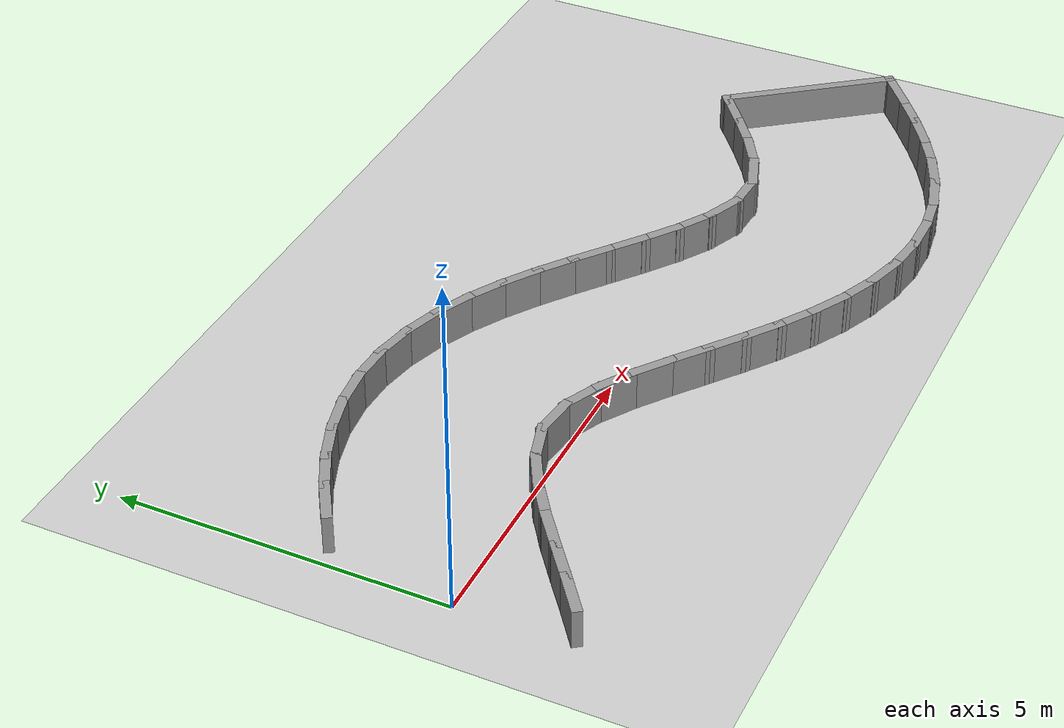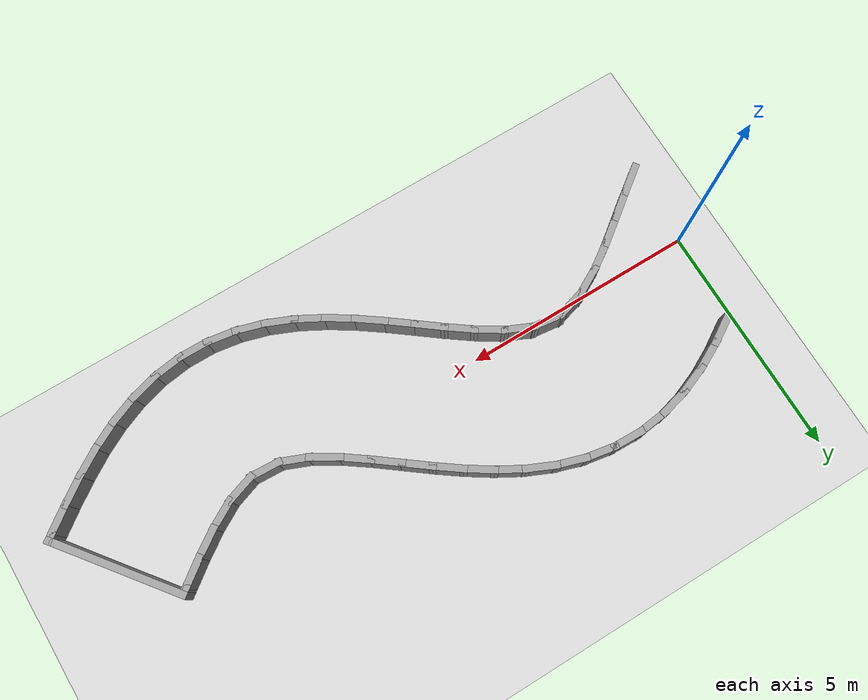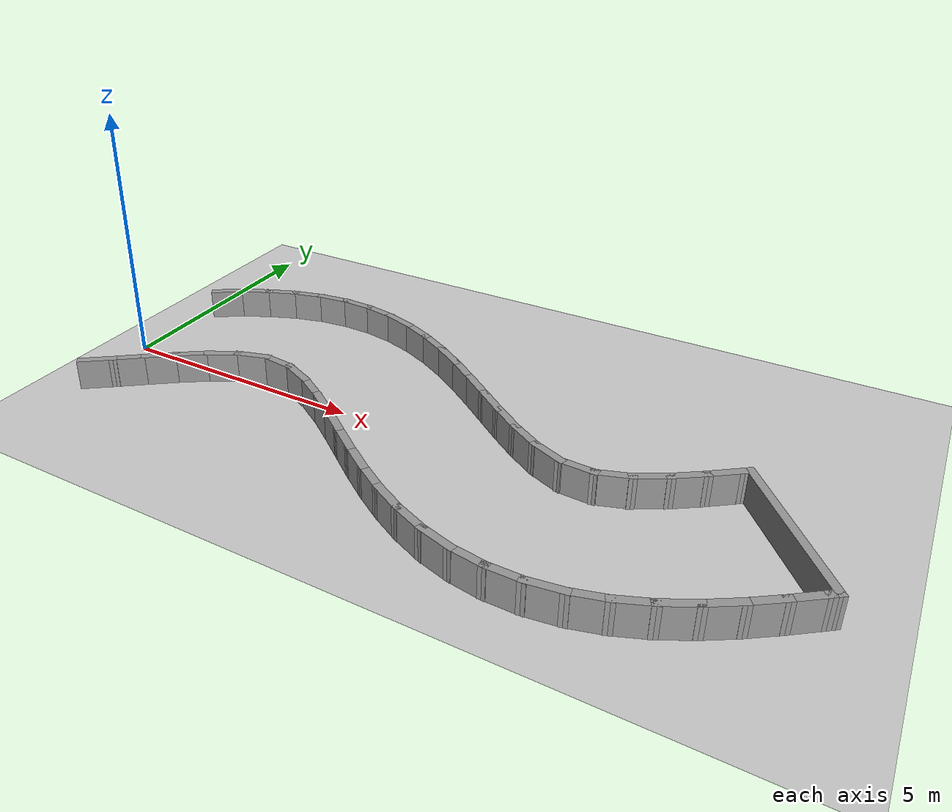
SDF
<sdf version="1.7">
 <world name="default">
  <model name="ground_plane">
   <static>1</static>
   <link name="link">
    <collision name="collision">
     <geometry><plane><normal>0 0 1</normal><size>100 100</size></plane></geometry>
     <surface><friction><ode><mu>100</mu><mu2>50</mu2></ode></friction></surface>
    </collision>
    <visual name="visual">
     <cast_shadows>0</cast_shadows>
     <geometry><plane><normal>0 0 1</normal><size>100 100</size></plane></geometry>
     <material>
      <script><uri>file://media/materials/scripts/gazebo.material</uri><name>Gazebo/Grey</name></script>
     </material>
    </visual>
   </link>
  </model>
  <model name="double_s_curve">
   <link name="Wall_27">
    <collision name="Wall_27_Collision">
     <geometry><box><size>0.7499 0.1500 0.6000</size></box></geometry>
     <pose>0 0 0.3000 0 -0 0</pose>
    </collision>
    <visual name="Wall_27_Visual">
     <pose>0 0 0.3000 0 -0 0</pose>
     <geometry><box><size>0.7499 0.1500 0.6000</size></box></geometry>
     <material>
      <script><uri>file://media/materials/scripts/gazebo.material</uri><name>Gazebo/Grey</name></script>
      <ambient>1 1 1 1</ambient>
     </material>
    </visual>
    <pose>0.5509 2.1172 0 0 -0 0.55933</pose>
   </link>
   <link name="Wall_28">
    <collision name="Wall_28_Collision">
     <geometry><box><size>0.7498 0.1500 0.6000</size></box></geometry>
     <pose>0 0 0.3000 0 -0 0</pose>
    </collision>
    <visual name="Wall_28_Visual">
     <pose>0 0 0.3000 0 -0 0</pose>
     <geometry><box><size>0.7498 0.1500 0.6000</size></box></geometry>
     <material>
      <script><uri>file://media/materials/scripts/gazebo.material</uri><name>Gazebo/Grey</name></script>
      <ambient>1 1 1 1</ambient>
     </material>
    </visual>
    <pose>1.0712 2.4149 0 0 -0 0.48016</pose>
   </link>
   <link name="Wall_29">
    <collision name="Wall_29_Collision">
     <geometry><box><size>0.7497 0.1500 0.6000</size></box></geometry>
     <pose>0 0 0.3000 0 -0 0</pose>
    </collision>
    <visual name="Wall_29_Visual">
     <pose>0 0 0.3000 0 -0 0</pose>
     <geometry><box><size>0.7497 0.1500 0.6000</size></box></geometry>
     <material>
      <script><uri>file://media/materials/scripts/gazebo.material</uri><name>Gazebo/Grey</name></script>
      <ambient>1 1 1 1</ambient>
     </material>
    </visual>
    <pose>1.6158 2.6641 0 0 -0 0.37811</pose>
   </link>
   <link name="Wall_30">
    <collision name="Wall_30_Collision">
     <geometry><box><size>0.7496 0.1500 0.6000</size></box></geometry>
     <pose>0 0 0.3000 0 -0 0</pose>
    </collision>
    <visual name="Wall_30_Visual">
     <pose>0 0 0.3000 0 -0 0</pose>
     <geometry><box><size>0.7496 0.1500 0.6000</size></box></geometry>
     <material>
      <script><uri>file://media/materials/scripts/gazebo.material</uri><name>Gazebo/Grey</name></script>
      <ambient>1 1 1 1</ambient>
     </material>
    </visual>
    <pose>2.1845 2.8505 0 0 -0 0.25511</pose>
   </link>
   <link name="Wall_31">
    <collision name="Wall_31_Collision">
     <geometry><box><size>0.7495 0.1500 0.6000</size></box></geometry>
     <pose>0 0 0.3000 0 -0 0</pose>
    </collision>
    <visual name="Wall_31_Visual">
     <pose>0 0 0.3000 0 -0 0</pose>
     <geometry><box><size>0.7495 0.1500 0.6000</size></box></geometry>
     <material>
      <script><uri>file://media/materials/scripts/gazebo.material</uri><name>Gazebo/Grey</name></script>
      <ambient>1 1 1 1</ambient>
     </material>
    </visual>
    <pose>2.7723 2.9610 0 0 -0 0.11659</pose>
   </link>
   <link name="Wall_32">
    <collision name="Wall_32_Collision">
     <geometry><box><size>0.7494 0.1500 0.6000</size></box></geometry>
     <pose>0 0 0.3000 0 -0 0</pose>
    </collision>
    <visual name="Wall_32_Visual">
     <pose>0 0 0.3000 0 -0 0</pose>
     <geometry><box><size>0.7494 0.1500 0.6000</size></box></geometry>
     <material>
      <script><uri>file://media/materials/scripts/gazebo.material</uri><name>Gazebo/Grey</name></script>
      <ambient>1 1 1 1</ambient>
     </material>
    </visual>
    <pose>3.3696 2.9871 0 0 -0 -0.02935</pose>
   </link>
   <link name="Wall_33">
    <collision name="Wall_33_Collision">
     <geometry><box><size>0.7495 0.1500 0.6000</size></box></geometry>
     <pose>0 0 0.3000 0 -0 0</pose>
    </collision>
    <visual name="Wall_33_Visual">
     <pose>0 0 0.3000 0 -0 0</pose>
     <geometry><box><size>0.7495 0.1500 0.6000</size></box></geometry>
     <material>
      <script><uri>file://media/materials/scripts/gazebo.material</uri><name>Gazebo/Grey</name></script>
      <ambient>1 1 1 1</ambient>
     </material>
    </visual>
    <pose>3.9644 2.9266 0 0 -0 -0.17338</pose>
   </link>
   <link name="Wall_34">
    <collision name="Wall_34_Collision">
     <geometry><box><size>0.7496 0.1500 0.6000</size></box></geometry>
     <pose>0 0 0.3000 0 -0 0</pose>
    </collision>
    <visual name="Wall_34_Visual">
     <pose>0 0 0.3000 0 -0 0</pose>
     <geometry><box><size>0.7496 0.1500 0.6000</size></box></geometry>
     <material>
      <script><uri>file://media/materials/scripts/gazebo.material</uri><name>Gazebo/Grey</name></script>
      <ambient>1 1 1 1</ambient>
     </material>
    </visual>
    <pose>4.5455 2.7844 0 0 -0 -0.30649</pose>
   </link>
   <link name="Wall_35">
    <collision name="Wall_35_Collision">
     <geometry><box><size>0.7497 0.1500 0.6000</size></box></geometry>
     <pose>0 0 0.3000 0 -0 0</pose>
    </collision>
    <visual name="Wall_35_Visual">
     <pose>0 0 0.3000 0 -0 0</pose>
     <geometry><box><size>0.7497 0.1500 0.6000</size></box></geometry>
     <material>
      <script><uri>file://media/materials/scripts/gazebo.material</uri><name>Gazebo/Grey</name></script>
      <ambient>1 1 1 1</ambient>
     </material>
    </visual>
    <pose>5.1050 2.5712 0 0 -0 -0.42155</pose>
   </link>
   <link name="Wall_36">
    <collision name="Wall_36_Collision">
     <geometry><box><size>0.7498 0.1500 0.6000</size></box></geometry>
     <pose>0 0 0.3000 0 -0 0</pose>
    </collision>
    <visual name="Wall_36_Visual">
     <pose>0 0 0.3000 0 -0 0</pose>
     <geometry><box><size>0.7498 0.1500 0.6000</size></box></geometry>
     <material>
      <script><uri>file://media/materials/scripts/gazebo.material</uri><name>Gazebo/Grey</name></script>
      <ambient>1 1 1 1</ambient>
     </material>
    </visual>
    <pose>5.6396 2.3009 0 0 -0 -0.51471</pose>
   </link>
   <link name="Wall_37">
    <collision name="Wall_37_Collision">
     <geometry><box><size>0.7499 0.1500 0.6000</size></box></geometry>
     <pose>0 0 0.3000 0 -0 0</pose>
    </collision>
    <visual name="Wall_37_Visual">
     <pose>0 0 0.3000 0 -0 0</pose>
     <geometry><box><size>0.7499 0.1500 0.6000</size></box></geometry>
     <material>
      <script><uri>file://media/materials/scripts/gazebo.material</uri><name>Gazebo/Grey</name></script>
      <ambient>1 1 1 1</ambient>
     </material>
    </visual>
    <pose>6.1509 1.9878 0 0 -0 -0.58423</pose>
   </link>
   <link name="Wall_38">
    <collision name="Wall_38_Collision">
     <geometry><box><size>0.7500 0.1500 0.6000</size></box></geometry>
     <pose>0 0 0.3000 0 -0 0</pose>
    </collision>
    <visual name="Wall_38_Visual">
     <pose>0 0 0.3000 0 -0 0</pose>
     <geometry><box><size>0.7500 0.1500 0.6000</size></box></geometry>
     <material>
      <script><uri>file://media/materials/scripts/gazebo.material</uri><name>Gazebo/Grey</name></script>
      <ambient>1 1 1 1</ambient>
     </material>
    </visual>
    <pose>6.6434 1.6455 0 0 -0 -0.63075</pose>
   </link>
   <link name="Wall_39">
    <collision name="Wall_39_Collision">
     <geometry><box><size>0.7500 0.1500 0.6000</size></box></geometry>
     <pose>0 0 0.3000 0 -0 0</pose>
    </collision>
    <visual name="Wall_39_Visual">
     <pose>0 0 0.3000 0 -0 0</pose>
     <geometry><box><size>0.7500 0.1500 0.6000</size></box></geometry>
     <material>
      <script><uri>file://media/materials/scripts/gazebo.material</uri><name>Gazebo/Grey</name></script>
      <ambient>1 1 1 1</ambient>
     </material>
    </visual>
    <pose>7.1237 1.2860 0 0 -0 -0.65428</pose>
   </link>
   <link name="Wall_40">
    <collision name="Wall_40_Collision">
     <geometry><box><size>0.7500 0.1500 0.6000</size></box></geometry>
     <pose>0 0 0.3000 0 -0 0</pose>
    </collision>
    <visual name="Wall_40_Visual">
     <pose>0 0 0.3000 0 -0 0</pose>
     <geometry><box><size>0.7500 0.1500 0.6000</size></box></geometry>
     <material>
      <script><uri>file://media/materials/scripts/gazebo.material</uri><name>Gazebo/Grey</name></script>
      <ambient>1 1 1 1</ambient>
     </material>
    </visual>
    <pose>7.5999 0.9210 0 0 -0 -0.65361</pose>
   </link>
   <link name="Wall_41">
    <collision name="Wall_41_Collision">
     <geometry><box><size>0.7499 0.1500 0.6000</size></box></geometry>
     <pose>0 0 0.3000 0 -0 0</pose>
    </collision>
    <visual name="Wall_41_Visual">
     <pose>0 0 0.3000 0 -0 0</pose>
     <geometry><box><size>0.7499 0.1500 0.6000</size></box></geometry>
     <material>
      <script><uri>file://media/materials/scripts/gazebo.material</uri><name>Gazebo/Grey</name></script>
      <ambient>1 1 1 1</ambient>
     </material>
    </visual>
    <pose>8.0816 0.5635 0 0 -0 -0.62337</pose>
   </link>
   <link name="Wall_42">
    <collision name="Wall_42_Collision">
     <geometry><box><size>0.7497 0.1500 0.6000</size></box></geometry>
     <pose>0 0 0.3000 0 -0 0</pose>
    </collision>
    <visual name="Wall_42_Visual">
     <pose>0 0 0.3000 0 -0 0</pose>
     <geometry><box><size>0.7497 0.1500 0.6000</size></box></geometry>
     <material>
      <script><uri>file://media/materials/scripts/gazebo.material</uri><name>Gazebo/Grey</name></script>
      <ambient>1 1 1 1</ambient>
     </material>
    </visual>
    <pose>8.5810 0.2319 0 0 -0 -0.54894</pose>
   </link>
   <link name="Wall_43">
    <collision name="Wall_43_Collision">
     <geometry><box><size>0.7486 0.1500 0.6000</size></box></geometry>
     <pose>0 0 0.3000 0 -0 0</pose>
    </collision>
    <visual name="Wall_43_Visual">
     <pose>0 0 0.3000 0 -0 0</pose>
     <geometry><box><size>0.7486 0.1500 0.6000</size></box></geometry>
     <material>
      <script><uri>file://media/materials/scripts/gazebo.material</uri><name>Gazebo/Grey</name></script>
      <ambient>1 1 1 1</ambient>
     </material>
    </visual>
    <pose>9.1138 -0.0380 0 0 -0 -0.38845</pose>
   </link>
   <link name="Wall_44">
    <collision name="Wall_44_Collision">
     <geometry><box><size>0.7451 0.1500 0.6000</size></box></geometry>
     <pose>0 0 0.3000 0 -0 0</pose>
    </collision>
    <visual name="Wall_44_Visual">
     <pose>0 0 0.3000 0 -0 0</pose>
     <geometry><box><size>0.7451 0.1500 0.6000</size></box></geometry>
     <material>
      <script><uri>file://media/materials/scripts/gazebo.material</uri><name>Gazebo/Grey</name></script>
      <ambient>1 1 1 1</ambient>
     </material>
    </visual>
    <pose>9.6880 -0.1650 0 0 -0 -0.04592</pose>
   </link>
   <link name="Wall_45">
    <collision name="Wall_45_Collision">
     <geometry><box><size>0.7481 0.1500 0.6000</size></box></geometry>
     <pose>0 0 0.3000 0 -0 0</pose>
    </collision>
    <visual name="Wall_45_Visual">
     <pose>0 0 0.3000 0 -0 0</pose>
     <geometry><box><size>0.7481 0.1500 0.6000</size></box></geometry>
     <material>
      <script><uri>file://media/materials/scripts/gazebo.material</uri><name>Gazebo/Grey</name></script>
      <ambient>1 1 1 1</ambient>
     </material>
    </visual>
    <pose>10.2677 -0.0805 0 0 -0 0.33440</pose>
   </link>
   <link name="Wall_46">
    <collision name="Wall_46_Collision">
     <geometry><box><size>0.7496 0.1500 0.6000</size></box></geometry>
     <pose>0 0 0.3000 0 -0 0</pose>
    </collision>
    <visual name="Wall_46_Visual">
     <pose>0 0 0.3000 0 -0 0</pose>
     <geometry><box><size>0.7496 0.1500 0.6000</size></box></geometry>
     <material>
      <script><uri>file://media/materials/scripts/gazebo.material</uri><name>Gazebo/Grey</name></script>
      <ambient>1 1 1 1</ambient>
     </material>
    </visual>
    <pose>10.8097 0.1678 0 0 -0 0.52457</pose>
   </link>
   <link name="Wall_47">
    <collision name="Wall_47_Collision">
     <geometry><box><size>0.7499 0.1500 0.6000</size></box></geometry>
     <pose>0 0 0.3000 0 -0 0</pose>
    </collision>
    <visual name="Wall_47_Visual">
     <pose>0 0 0.3000 0 -0 0</pose>
     <geometry><box><size>0.7499 0.1500 0.6000</size></box></geometry>
     <material>
      <script><uri>file://media/materials/scripts/gazebo.material</uri><name>Gazebo/Grey</name></script>
      <ambient>1 1 1 1</ambient>
     </material>
    </visual>
    <pose>11.3147 0.4903 0 0 -0 0.61210</pose>
   </link>
   <link name="Wall_48">
    <collision name="Wall_48_Collision">
     <geometry><box><size>0.7500 0.1500 0.6000</size></box></geometry>
     <pose>0 0 0.3000 0 -0 0</pose>
    </collision>
    <visual name="Wall_48_Visual">
     <pose>0 0 0.3000 0 -0 0</pose>
     <geometry><box><size>0.7500 0.1500 0.6000</size></box></geometry>
     <material>
      <script><uri>file://media/materials/scripts/gazebo.material</uri><name>Gazebo/Grey</name></script>
      <ambient>1 1 1 1</ambient>
     </material>
    </visual>
    <pose>11.7990 0.8442 0 0 -0 0.64997</pose>
   </link>
   <link name="Wall_49">
    <collision name="Wall_49_Collision">
     <geometry><box><size>0.2837 0.1500 0.6000</size></box></geometry>
     <pose>0 0 0.3000 0 -0 0</pose>
    </collision>
    <visual name="Wall_49_Visual">
     <pose>0 0 0.3000 0 -0 0</pose>
     <geometry><box><size>0.2837 0.1500 0.6000</size></box></geometry>
     <material>
      <script><uri>file://media/materials/scripts/gazebo.material</uri><name>Gazebo/Grey</name></script>
      <ambient>1 1 1 1</ambient>
     </material>
    </visual>
    <pose>12.0907 1.0666 0 0 -0 0.65803</pose>
   </link>
   <link name="Wall_73">
    <collision name="Wall_73_Collision">
     <geometry><box><size>0.7500 0.1500 0.6000</size></box></geometry>
     <pose>0 0 0.3000 0 -0 0</pose>
    </collision>
    <visual name="Wall_73_Visual">
     <pose>0 0 0.3000 0 -0 0</pose>
     <geometry><box><size>0.7500 0.1500 0.6000</size></box></geometry>
     <material>
      <script><uri>file://media/materials/scripts/gazebo.material</uri><name>Gazebo/Grey</name></script>
      <ambient>1 1 1 1</ambient>
     </material>
    </visual>
    <pose>0.3256 -1.5112 0 0 -0 0.64231</pose>
   </link>
   <link name="Wall_74">
    <collision name="Wall_74_Collision">
     <geometry><box><size>0.7500 0.1500 0.6000</size></box></geometry>
     <pose>0 0 0.3000 0 -0 0</pose>
    </collision>
    <visual name="Wall_74_Visual">
     <pose>0 0 0.3000 0 -0 0</pose>
     <geometry><box><size>0.7500 0.1500 0.6000</size></box></geometry>
     <material>
      <script><uri>file://media/materials/scripts/gazebo.material</uri><name>Gazebo/Grey</name></script>
      <ambient>1 1 1 1</ambient>
     </material>
    </visual>
    <pose>0.8034 -1.1483 0 0 -0 0.65703</pose>
   </link>
   <link name="Wall_75">
    <collision name="Wall_75_Collision">
     <geometry><box><size>0.7500 0.1500 0.6000</size></box></geometry>
     <pose>0 0 0.3000 0 -0 0</pose>
    </collision>
    <visual name="Wall_75_Visual">
     <pose>0 0 0.3000 0 -0 0</pose>
     <geometry><box><size>0.7500 0.1500 0.6000</size></box></geometry>
     <material>
      <script><uri>file://media/materials/scripts/gazebo.material</uri><name>Gazebo/Grey</name></script>
      <ambient>1 1 1 1</ambient>
     </material>
    </visual>
    <pose>1.2804 -0.7844 0 0 -0 0.64617</pose>
   </link>
   <link name="Wall_76">
    <collision name="Wall_76_Collision">
     <geometry><box><size>0.7499 0.1500 0.6000</size></box></geometry>
     <pose>0 0 0.3000 0 -0 0</pose>
    </collision>
    <visual name="Wall_76_Visual">
     <pose>0 0 0.3000 0 -0 0</pose>
     <geometry><box><size>0.7499 0.1500 0.6000</size></box></geometry>
     <material>
      <script><uri>file://media/materials/scripts/gazebo.material</uri><name>Gazebo/Grey</name></script>
      <ambient>1 1 1 1</ambient>
     </material>
    </visual>
    <pose>1.7672 -0.4339 0 0 -0 0.60180</pose>
   </link>
   <link name="Wall_77">
    <collision name="Wall_77_Collision">
     <geometry><box><size>0.7495 0.1500 0.6000</size></box></geometry>
     <pose>0 0 0.3000 0 -0 0</pose>
    </collision>
    <visual name="Wall_77_Visual">
     <pose>0 0 0.3000 0 -0 0</pose>
     <geometry><box><size>0.7495 0.1500 0.6000</size></box></geometry>
     <material>
      <script><uri>file://media/materials/scripts/gazebo.material</uri><name>Gazebo/Grey</name></script>
      <ambient>1 1 1 1</ambient>
     </material>
    </visual>
    <pose>2.2771 -0.1198 0 0 -0 0.50253</pose>
   </link>
   <link name="Wall_78">
    <collision name="Wall_78_Collision">
     <geometry><box><size>0.7475 0.1500 0.6000</size></box></geometry>
     <pose>0 0 0.3000 0 -0 0</pose>
    </collision>
    <visual name="Wall_78_Visual">
     <pose>0 0 0.3000 0 -0 0</pose>
     <geometry><box><size>0.7475 0.1500 0.6000</size></box></geometry>
     <material>
      <script><uri>file://media/materials/scripts/gazebo.material</uri><name>Gazebo/Grey</name></script>
      <ambient>1 1 1 1</ambient>
     </material>
    </visual>
    <pose>2.8265 0.1086 0 0 -0 0.28512</pose>
   </link>
   <link name="Wall_79">
    <collision name="Wall_79_Collision">
     <geometry><box><size>0.7455 0.1500 0.6000</size></box></geometry>
     <pose>0 0 0.3000 0 -0 0</pose>
    </collision>
    <visual name="Wall_79_Visual">
     <pose>0 0 0.3000 0 -0 0</pose>
     <geometry><box><size>0.7455 0.1500 0.6000</size></box></geometry>
     <material>
      <script><uri>file://media/materials/scripts/gazebo.material</uri><name>Gazebo/Grey</name></script>
      <ambient>1 1 1 1</ambient>
     </material>
    </visual>
    <pose>3.4089 0.1581 0 0 -0 -0.11629</pose>
   </link>
   <link name="Wall_80">
    <collision name="Wall_80_Collision">
     <geometry><box><size>0.7490 0.1500 0.6000</size></box></geometry>
     <pose>0 0 0.3000 0 -0 0</pose>
    </collision>
    <visual name="Wall_80_Visual">
     <pose>0 0 0.3000 0 -0 0</pose>
     <geometry><box><size>0.7490 0.1500 0.6000</size></box></geometry>
     <material>
      <script><uri>file://media/materials/scripts/gazebo.material</uri><name>Gazebo/Grey</name></script>
      <ambient>1 1 1 1</ambient>
     </material>
    </visual>
    <pose>3.9776 0.0002 0 0 -0 -0.42459</pose>
   </link>
   <link name="Wall_81">
    <collision name="Wall_81_Collision">
     <geometry><box><size>0.7498 0.1500 0.6000</size></box></geometry>
     <pose>0 0 0.3000 0 -0 0</pose>
    </collision>
    <visual name="Wall_81_Visual">
     <pose>0 0 0.3000 0 -0 0</pose>
     <geometry><box><size>0.7498 0.1500 0.6000</size></box></geometry>
     <material>
      <script><uri>file://media/materials/scripts/gazebo.material</uri><name>Gazebo/Grey</name></script>
      <ambient>1 1 1 1</ambient>
     </material>
    </visual>
    <pose>4.5036 -0.2839 0 0 -0 -0.56552</pose>
   </link>
   <link name="Wall_82">
    <collision name="Wall_82_Collision">
     <geometry><box><size>0.7500 0.1500 0.6000</size></box></geometry>
     <pose>0 0 0.3000 0 -0 0</pose>
    </collision>
    <visual name="Wall_82_Visual">
     <pose>0 0 0.3000 0 -0 0</pose>
     <geometry><box><size>0.7500 0.1500 0.6000</size></box></geometry>
     <material>
      <script><uri>file://media/materials/scripts/gazebo.material</uri><name>Gazebo/Grey</name></script>
      <ambient>1 1 1 1</ambient>
     </material>
    </visual>
    <pose>4.9991 -0.6215 0 0 -0 -0.63089</pose>
   </link>
   <link name="Wall_83">
    <collision name="Wall_83_Collision">
     <geometry><box><size>0.7500 0.1500 0.6000</size></box></geometry>
     <pose>0 0 0.3000 0 -0 0</pose>
    </collision>
    <visual name="Wall_83_Visual">
     <pose>0 0 0.3000 0 -0 0</pose>
     <geometry><box><size>0.7500 0.1500 0.6000</size></box></geometry>
     <material>
      <script><uri>file://media/materials/scripts/gazebo.material</uri><name>Gazebo/Grey</name></script>
      <ambient>1 1 1 1</ambient>
     </material>
    </visual>
    <pose>5.4791 -0.9813 0 0 -0 -0.65553</pose>
   </link>
   <link name="Wall_84">
    <collision name="Wall_84_Collision">
     <geometry><box><size>0.7500 0.1500 0.6000</size></box></geometry>
     <pose>0 0 0.3000 0 -0 0</pose>
    </collision>
    <visual name="Wall_84_Visual">
     <pose>0 0 0.3000 0 -0 0</pose>
     <geometry><box><size>0.7500 0.1500 0.6000</size></box></geometry>
     <material>
      <script><uri>file://media/materials/scripts/gazebo.material</uri><name>Gazebo/Grey</name></script>
      <ambient>1 1 1 1</ambient>
     </material>
    </visual>
    <pose>5.9554 -1.3462 0 0 -0 -0.65197</pose>
   </link>
   <link name="Wall_85">
    <collision name="Wall_85_Collision">
     <geometry><box><size>0.7500 0.1500 0.6000</size></box></geometry>
     <pose>0 0 0.3000 0 -0 0</pose>
    </collision>
    <visual name="Wall_85_Visual">
     <pose>0 0 0.3000 0 -0 0</pose>
     <geometry><box><size>0.7500 0.1500 0.6000</size></box></geometry>
     <material>
      <script><uri>file://media/materials/scripts/gazebo.material</uri><name>Gazebo/Grey</name></script>
      <ambient>1 1 1 1</ambient>
     </material>
    </visual>
    <pose>6.4372 -1.7037 0 0 -0 -0.62458</pose>
   </link>
   <link name="Wall_86">
    <collision name="Wall_86_Collision">
     <geometry><box><size>0.7499 0.1500 0.6000</size></box></geometry>
     <pose>0 0 0.3000 0 -0 0</pose>
    </collision>
    <visual name="Wall_86_Visual">
     <pose>0 0 0.3000 0 -0 0</pose>
     <geometry><box><size>0.7499 0.1500 0.6000</size></box></geometry>
     <material>
      <script><uri>file://media/materials/scripts/gazebo.material</uri><name>Gazebo/Grey</name></script>
      <ambient>1 1 1 1</ambient>
     </material>
    </visual>
    <pose>6.9324 -2.0421 0 0 -0 -0.57442</pose>
   </link>
   <link name="Wall_87">
    <collision name="Wall_87_Collision">
     <geometry><box><size>0.7498 0.1500 0.6000</size></box></geometry>
     <pose>0 0 0.3000 0 -0 0</pose>
    </collision>
    <visual name="Wall_87_Visual">
     <pose>0 0 0.3000 0 -0 0</pose>
     <geometry><box><size>0.7498 0.1500 0.6000</size></box></geometry>
     <material>
      <script><uri>file://media/materials/scripts/gazebo.material</uri><name>Gazebo/Grey</name></script>
      <ambient>1 1 1 1</ambient>
     </material>
    </visual>
    <pose>7.4473 -2.3490 0 0 -0 -0.50078</pose>
   </link>
   <link name="Wall_88">
    <collision name="Wall_88_Collision">
     <geometry><box><size>0.7497 0.1500 0.6000</size></box></geometry>
     <pose>0 0 0.3000 0 -0 0</pose>
    </collision>
    <visual name="Wall_88_Visual">
     <pose>0 0 0.3000 0 -0 0</pose>
     <geometry><box><size>0.7497 0.1500 0.6000</size></box></geometry>
     <material>
      <script><uri>file://media/materials/scripts/gazebo.material</uri><name>Gazebo/Grey</name></script>
      <ambient>1 1 1 1</ambient>
     </material>
    </visual>
    <pose>7.9861 -2.6109 0 0 -0 -0.40407</pose>
   </link>
   <link name="Wall_89">
    <collision name="Wall_89_Collision">
     <geometry><box><size>0.7496 0.1500 0.6000</size></box></geometry>
     <pose>0 0 0.3000 0 -0 0</pose>
    </collision>
    <visual name="Wall_89_Visual">
     <pose>0 0 0.3000 0 -0 0</pose>
     <geometry><box><size>0.7496 0.1500 0.6000</size></box></geometry>
     <material>
      <script><uri>file://media/materials/scripts/gazebo.material</uri><name>Gazebo/Grey</name></script>
      <ambient>1 1 1 1</ambient>
     </material>
    </visual>
    <pose>8.5494 -2.8133 0 0 -0 -0.28558</pose>
   </link>
   <link name="Wall_90">
    <collision name="Wall_90_Collision">
     <geometry><box><size>0.7495 0.1500 0.6000</size></box></geometry>
     <pose>0 0 0.3000 0 -0 0</pose>
    </collision>
    <visual name="Wall_90_Visual">
     <pose>0 0 0.3000 0 -0 0</pose>
     <geometry><box><size>0.7495 0.1500 0.6000</size></box></geometry>
     <material>
      <script><uri>file://media/materials/scripts/gazebo.material</uri><name>Gazebo/Grey</name></script>
      <ambient>1 1 1 1</ambient>
     </material>
    </visual>
    <pose>9.1334 -2.9425 0 0 -0 -0.15000</pose>
   </link>
   <link name="Wall_91">
    <collision name="Wall_91_Collision">
     <geometry><box><size>0.7494 0.1500 0.6000</size></box></geometry>
     <pose>0 0 0.3000 0 -0 0</pose>
    </collision>
    <visual name="Wall_91_Visual">
     <pose>0 0 0.3000 0 -0 0</pose>
     <geometry><box><size>0.7494 0.1500 0.6000</size></box></geometry>
     <material>
      <script><uri>file://media/materials/scripts/gazebo.material</uri><name>Gazebo/Grey</name></script>
      <ambient>1 1 1 1</ambient>
     </material>
    </visual>
    <pose>9.7295 -2.9888 0 0 -0 -0.00496</pose>
   </link>
   <link name="Wall_92">
    <collision name="Wall_92_Collision">
     <geometry><box><size>0.7495 0.1500 0.6000</size></box></geometry>
     <pose>0 0 0.3000 0 -0 0</pose>
    </collision>
    <visual name="Wall_92_Visual">
     <pose>0 0 0.3000 0 -0 0</pose>
     <geometry><box><size>0.7495 0.1500 0.6000</size></box></geometry>
     <material>
      <script><uri>file://media/materials/scripts/gazebo.material</uri><name>Gazebo/Grey</name></script>
      <ambient>1 1 1 1</ambient>
     </material>
    </visual>
    <pose>10.3261 -2.9483 0 0 -0 0.14035</pose>
   </link>
   <link name="Wall_93">
    <collision name="Wall_93_Collision">
     <geometry><box><size>0.7496 0.1500 0.6000</size></box></geometry>
     <pose>0 0 0.3000 0 -0 0</pose>
    </collision>
    <visual name="Wall_93_Visual">
     <pose>0 0 0.3000 0 -0 0</pose>
     <geometry><box><size>0.7496 0.1500 0.6000</size></box></geometry>
     <material>
      <script><uri>file://media/materials/scripts/gazebo.material</uri><name>Gazebo/Grey</name></script>
      <ambient>1 1 1 1</ambient>
     </material>
    </visual>
    <pose>10.9112 -2.8245 0 0 -0 0.27671</pose>
   </link>
   <link name="Wall_94">
    <collision name="Wall_94_Collision">
     <geometry><box><size>0.7497 0.1500 0.6000</size></box></geometry>
     <pose>0 0 0.3000 0 -0 0</pose>
    </collision>
    <visual name="Wall_94_Visual">
     <pose>0 0 0.3000 0 -0 0</pose>
     <geometry><box><size>0.7497 0.1500 0.6000</size></box></geometry>
     <material>
      <script><uri>file://media/materials/scripts/gazebo.material</uri><name>Gazebo/Grey</name></script>
      <ambient>1 1 1 1</ambient>
     </material>
    </visual>
    <pose>11.4762 -2.6268 0 0 -0 0.39646</pose>
   </link>
   <link name="Wall_95">
    <collision name="Wall_95_Collision">
     <geometry><box><size>0.7498 0.1500 0.6000</size></box></geometry>
     <pose>0 0 0.3000 0 -0 0</pose>
    </collision>
    <visual name="Wall_95_Visual">
     <pose>0 0 0.3000 0 -0 0</pose>
     <geometry><box><size>0.7498 0.1500 0.6000</size></box></geometry>
     <material>
      <script><uri>file://media/materials/scripts/gazebo.material</uri><name>Gazebo/Grey</name></script>
      <ambient>1 1 1 1</ambient>
     </material>
    </visual>
    <pose>12.0167 -2.3686 0 0 -0 0.49505</pose>
   </link>
   <link name="Wall_96">
    <collision name="Wall_96_Collision">
     <geometry><box><size>0.7499 0.1500 0.6000</size></box></geometry>
     <pose>0 0 0.3000 0 -0 0</pose>
    </collision>
    <visual name="Wall_96_Visual">
     <pose>0 0 0.3000 0 -0 0</pose>
     <geometry><box><size>0.7499 0.1500 0.6000</size></box></geometry>
     <material>
      <script><uri>file://media/materials/scripts/gazebo.material</uri><name>Gazebo/Grey</name></script>
      <ambient>1 1 1 1</ambient>
     </material>
    </visual>
    <pose>12.5331 -2.0642 0 0 -0 0.57004</pose>
   </link>
   <link name="Wall_97">
    <collision name="Wall_97_Collision">
     <geometry><box><size>0.7500 0.1500 0.6000</size></box></geometry>
     <pose>0 0 0.3000 0 -0 0</pose>
    </collision>
    <visual name="Wall_97_Visual">
     <pose>0 0 0.3000 0 -0 0</pose>
     <geometry><box><size>0.7500 0.1500 0.6000</size></box></geometry>
     <material>
      <script><uri>file://media/materials/scripts/gazebo.material</uri><name>Gazebo/Grey</name></script>
      <ambient>1 1 1 1</ambient>
     </material>
    </visual>
    <pose>13.0294 -1.7276 0 0 -0 0.62193</pose>
   </link>
   <link name="Wall_98">
    <collision name="Wall_98_Collision">
     <geometry><box><size>0.7500 0.1500 0.6000</size></box></geometry>
     <pose>0 0 0.3000 0 -0 0</pose>
    </collision>
    <visual name="Wall_98_Visual">
     <pose>0 0 0.3000 0 -0 0</pose>
     <geometry><box><size>0.7500 0.1500 0.6000</size></box></geometry>
     <material>
      <script><uri>file://media/materials/scripts/gazebo.material</uri><name>Gazebo/Grey</name></script>
      <ambient>1 1 1 1</ambient>
     </material>
    </visual>
    <pose>13.5119 -1.3711 0 0 -0 0.65083</pose>
   </link>
   <link name="Wall_99">
    <collision name="Wall_99_Collision">
     <geometry><box><size>0.2837 0.1500 0.6000</size></box></geometry>
     <pose>0 0 0.3000 0 -0 0</pose>
    </collision>
    <visual name="Wall_99_Visual">
     <pose>0 0 0.3000 0 -0 0</pose>
     <geometry><box><size>0.2837 0.1500 0.6000</size></box></geometry>
     <material>
      <script><uri>file://media/materials/scripts/gazebo.material</uri><name>Gazebo/Grey</name></script>
      <ambient>1 1 1 1</ambient>
     </material>
    </visual>
    <pose>13.8035 -1.1484 0 0 -0 0.65803</pose>
   </link>
   <link name="Wall_101">
    <collision name="Wall_101_Collision">
     <geometry><box><size>2.9500 0.1500 0.6000</size></box></geometry>
     <pose>0 0 0.3000 0 -0 0</pose>
    </collision>
    <visual name="Wall_101_Visual">
     <pose>0 0 0.3000 0 -0 0</pose>
     <geometry><box><size>2.9500 0.1500 0.6000</size></box></geometry>
     <material>
      <script><uri>file://media/materials/scripts/gazebo.material</uri><name>Gazebo/Grey</name></script>
      <ambient>1 1 1 1</ambient>
     </material>
    </visual>
    <pose>13.0000 0.0000 0 0 -0 -0.91259</pose>
   </link>
   <static>1</static>
  </model>
 </world>
</sdf>
